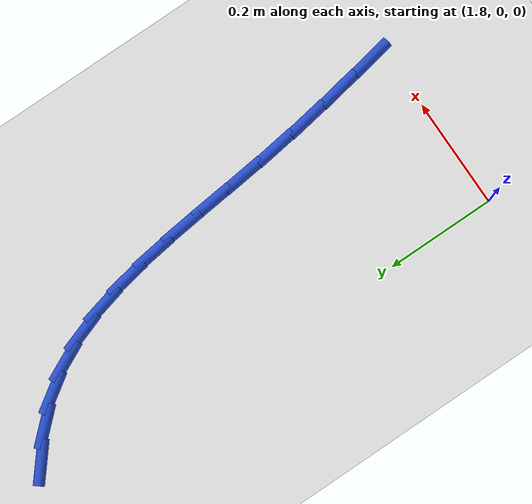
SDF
<sdf version="1.6">
 <world name="default">
  <model name="ground_plane">
   <static>1</static>
   <link name="link">
    <collision name="collision">
     <geometry><plane><normal>0 0 1</normal><size>100 100</size></plane></geometry>
     <surface><friction><ode><mu>100</mu><mu2>50</mu2></ode></friction></surface>
    </collision>
    <visual name="visual">
     <cast_shadows>0</cast_shadows>
     <geometry><plane><normal>0 0 1</normal><size>100 100</size></plane></geometry>
     <material>
      <script><uri>file://media/materials/scripts/gazebo.material</uri><name>Gazebo/WhiteGlow</name></script>
     </material>
    </visual>
   </link>
  </model>
  <model name="line">
   <link name="link_44">
    <pose>1.8602266755773356 0.8753841635882244 0.01 0 1.57 -0.69266885655296</pose>
    <collision name="collision">
     <geometry><cylinder><radius>0.01</radius><length>0.08</length></cylinder></geometry>
    </collision>
    <visual name="visual">
     <material>
      <script><name>Gazebo/Blue</name><uri>file://media/materials/scripts/gazebo.material</uri></script>
     </material>
     <geometry><cylinder><radius>0.01</radius><length>0.08</length></cylinder></geometry>
    </visual>
   </link>
   <link name="link_45">
    <pose>1.9069977192607446 0.8365720151875826 0.01 0 1.57 -0.8240790952008289</pose>
    <collision name="collision">
     <geometry><cylinder><radius>0.01</radius><length>0.08</length></cylinder></geometry>
    </collision>
    <visual name="visual">
     <material>
      <script><name>Gazebo/Blue</name><uri>file://media/materials/scripts/gazebo.material</uri></script>
     </material>
     <geometry><cylinder><radius>0.01</radius><length>0.08</length></cylinder></geometry>
    </visual>
   </link>
   <link name="link_46">
    <pose>1.946298908893944 0.794106432239224 0.01 0 1.57 -0.9799514197759341</pose>
    <collision name="collision">
     <geometry><cylinder><radius>0.01</radius><length>0.08</length></cylinder></geometry>
    </collision>
    <visual name="visual">
     <material>
      <script><name>Gazebo/Blue</name><uri>file://media/materials/scripts/gazebo.material</uri></script>
     </material>
     <geometry><cylinder><radius>0.01</radius><length>0.08</length></cylinder></geometry>
    </visual>
   </link>
   <link name="link_47">
    <pose>1.9777659607572895 0.7471952976554044 0.01 0 1.57 -1.1197265217274062</pose>
    <collision name="collision">
     <geometry><cylinder><radius>0.01</radius><length>0.08</length></cylinder></geometry>
    </collision>
    <visual name="visual">
     <material>
      <script><name>Gazebo/Blue</name><uri>file://media/materials/scripts/gazebo.material</uri></script>
     </material>
     <geometry><cylinder><radius>0.01</radius><length>0.08</length></cylinder></geometry>
    </visual>
   </link>
   <link name="link_48">
    <pose>2.002491199012843 0.696149663879279 0.01 0 1.57 -1.2361581843884932</pose>
    <collision name="collision">
     <geometry><cylinder><radius>0.01</radius><length>0.08</length></cylinder></geometry>
    </collision>
    <visual name="visual">
     <material>
      <script><name>Gazebo/Blue</name><uri>file://media/materials/scripts/gazebo.material</uri></script>
     </material>
     <geometry><cylinder><radius>0.01</radius><length>0.08</length></cylinder></geometry>
    </visual>
   </link>
   <link name="link_49">
    <pose>2.0215693846207725 0.6412824288756818 0.01 0 1.57 -1.3269157681816548</pose>
    <collision name="collision">
     <geometry><cylinder><radius>0.01</radius><length>0.08</length></cylinder></geometry>
    </collision>
    <visual name="visual">
     <material>
      <script><name>Gazebo/Blue</name><uri>file://media/materials/scripts/gazebo.material</uri></script>
     </material>
     <geometry><cylinder><radius>0.01</radius><length>0.08</length></cylinder></geometry>
    </visual>
   </link>
   <link name="link_50">
    <pose>2.036095278541246 0.5829064906094461 0.01 0 1.57 -1.392932301735994</pose>
    <collision name="collision">
     <geometry><cylinder><radius>0.01</radius><length>0.08</length></cylinder></geometry>
    </collision>
    <visual name="visual">
     <material>
      <script><name>Gazebo/Blue</name><uri>file://media/materials/scripts/gazebo.material</uri></script>
     </material>
     <geometry><cylinder><radius>0.01</radius><length>0.08</length></cylinder></geometry>
    </visual>
   </link>
   <link name="link_51">
    <pose>2.0471636417344325 0.5213347470454064 0.01 0 1.57 -1.4365433666163387</pose>
    <collision name="collision">
     <geometry><cylinder><radius>0.01</radius><length>0.08</length></cylinder></geometry>
    </collision>
    <visual name="visual">
     <material>
      <script><name>Gazebo/Blue</name><uri>file://media/materials/scripts/gazebo.material</uri></script>
     </material>
     <geometry><cylinder><radius>0.01</radius><length>0.08</length></cylinder></geometry>
    </visual>
   </link>
   <link name="link_52">
    <pose>2.055869235160499 0.45688009614839525 0.01 0 1.57 -1.4602805898502857</pose>
    <collision name="collision">
     <geometry><cylinder><radius>0.01</radius><length>0.08</length></cylinder></geometry>
    </collision>
    <visual name="visual">
     <material>
      <script><name>Gazebo/Blue</name><uri>file://media/materials/scripts/gazebo.material</uri></script>
     </material>
     <geometry><cylinder><radius>0.01</radius><length>0.08</length></cylinder></geometry>
    </visual>
   </link>
   <link name="link_53">
    <pose>2.0633068197796143 0.3898554358832476 0.01 0 1.57 -1.4663259939819935</pose>
    <collision name="collision">
     <geometry><cylinder><radius>0.01</radius><length>0.08</length></cylinder></geometry>
    </collision>
    <visual name="visual">
     <material>
      <script><name>Gazebo/Blue</name><uri>file://media/materials/scripts/gazebo.material</uri></script>
     </material>
     <geometry><cylinder><radius>0.01</radius><length>0.08</length></cylinder></geometry>
    </visual>
   </link>
   <link name="link_54">
    <pose>2.070571156551946 0.3205736642147963 0.01 0 1.57 -1.4563705012148547</pose>
    <collision name="collision">
     <geometry><cylinder><radius>0.01</radius><length>0.08</length></cylinder></geometry>
    </collision>
    <visual name="visual">
     <material>
      <script><name>Gazebo/Blue</name><uri>file://media/materials/scripts/gazebo.material</uri></script>
     </material>
     <geometry><cylinder><radius>0.01</radius><length>0.08</length></cylinder></geometry>
    </visual>
   </link>
   <link name="link_55">
    <pose>2.0787570064376624 0.2493476791078758 0.01 0 1.57 -1.4325781685883714</pose>
    <collision name="collision">
     <geometry><cylinder><radius>0.01</radius><length>0.08</length></cylinder></geometry>
    </collision>
    <visual name="visual">
     <material>
      <script><name>Gazebo/Blue</name><uri>file://media/materials/scripts/gazebo.material</uri></script>
     </material>
     <geometry><cylinder><radius>0.01</radius><length>0.08</length></cylinder></geometry>
    </visual>
   </link>
   <link name="link_56">
    <pose>2.0888910501216826 0.17649598576542064 0.01 0 1.57 -1.4080735081989015</pose>
    <collision name="collision">
     <geometry><cylinder><radius>0.01</radius><length>0.08</length></cylinder></geometry>
    </collision>
    <visual name="visual">
     <material>
      <script><name>Gazebo/Blue</name><uri>file://media/materials/scripts/gazebo.material</uri></script>
     </material>
     <geometry><cylinder><radius>0.01</radius><length>0.08</length></cylinder></geometry>
    </visual>
   </link>
   <link name="link_57">
    <pose>2.1010532429471898 0.10241506372857603 0.01 0 1.57 -1.391377873055979</pose>
    <collision name="collision">
     <geometry><cylinder><radius>0.01</radius><length>0.08</length></cylinder></geometry>
    </collision>
    <visual name="visual">
     <material>
      <script><name>Gazebo/Blue</name><uri>file://media/materials/scripts/gazebo.material</uri></script>
     </material>
     <geometry><cylinder><radius>0.01</radius><length>0.08</length></cylinder></geometry>
    </visual>
   </link>
   <link name="link_58">
    <pose>2.114629883015809 0.027558523642905213 0.01 0 1.57 -1.3820359472327082</pose>
    <collision name="collision">
     <geometry><cylinder><radius>0.01</radius><length>0.08</length></cylinder></geometry>
    </collision>
    <visual name="visual">
     <material>
      <script><name>Gazebo/Blue</name><uri>file://media/materials/scripts/gazebo.material</uri></script>
     </material>
     <geometry><cylinder><radius>0.01</radius><length>0.08</length></cylinder></geometry>
    </visual>
   </link>
  </model>
 </world>
</sdf>
